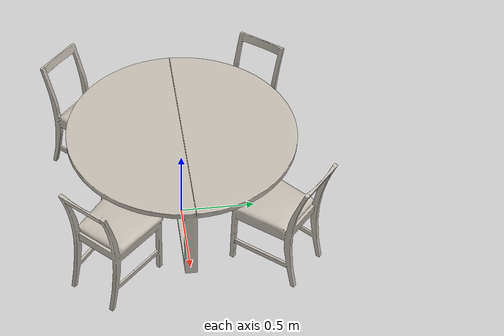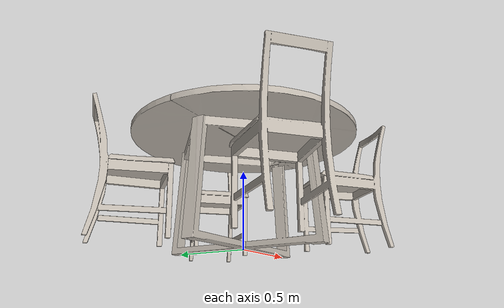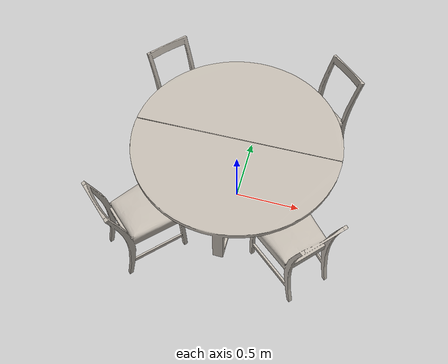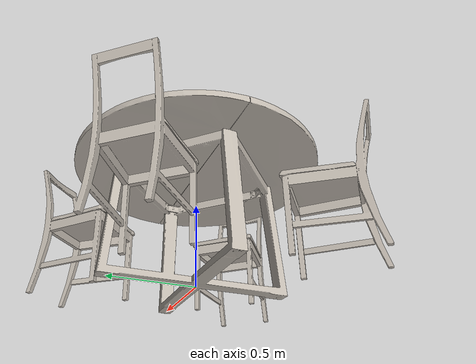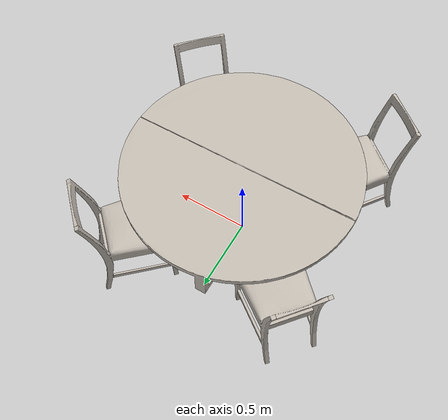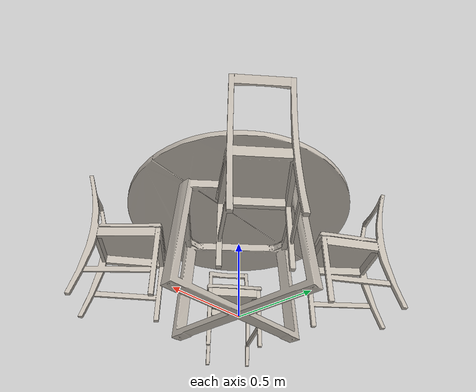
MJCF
<mujoco model="table">
  <default>
    <default class="visual">
      <geom group="2" type="mesh" contype="0" conaffinity="0"/>
    </default>
    <default class="collision">
      <geom group="3" type="mesh"/>
    </default>
  </default>
  <asset>
    <texture type="2d" name="60412885_PS01_S01_NV01_RQP3_3_0_Basecolor_0" file="60412885_PS01_S01_NV01_RQP3_3_0_Basecolor_0.png"/>
    <material name="SimplygonCastMaterial.002" texture="60412885_PS01_S01_NV01_RQP3_3_0_Basecolor_0" specular="0.5" shininess="0.5"/>
    <texture type="2d" name="Basecolor_0" file="Basecolor_0.png"/>
    <material name="material_0.002" texture="Basecolor_0" specular="0.5" shininess="0.5"/>
    <mesh file="table_0.obj"/>
    <mesh file="table_1.obj"/>
  </asset>
  <worldbody>
    <body name="table">
      <geom mesh="table_0" material="SimplygonCastMaterial.002" class="visual"/>
      <geom mesh="table_1" material="material_0.002" class="visual"/>
      <geom mesh="table_0" class="collision"/>
      <geom mesh="table_1" class="collision"/>
    </body>
  </worldbody>
</mujoco>
